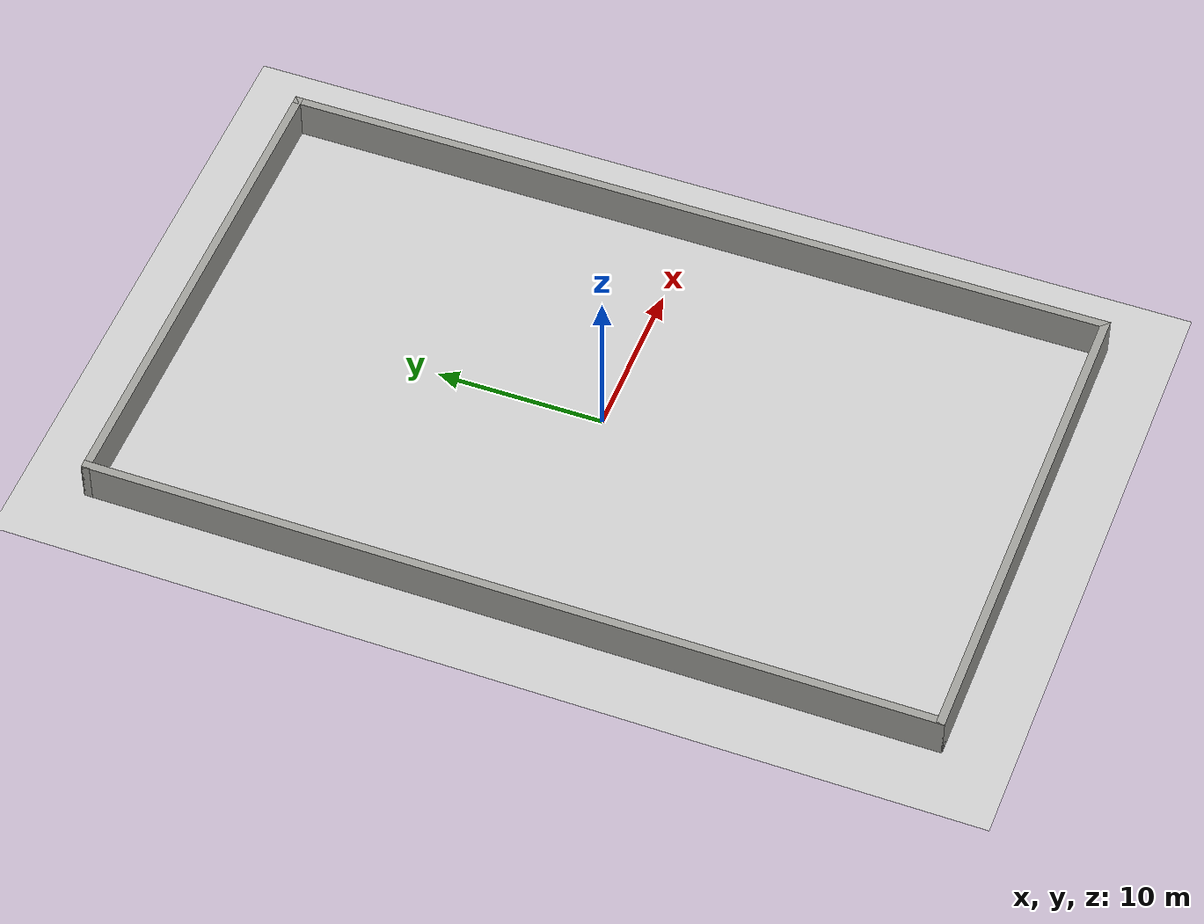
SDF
<sdf version="1.8">
 <world name="world_demo">
  <gravity>0 0 -9.8</gravity>
  <magnetic_field>6e-06 2.3e-05 -4.2e-05</magnetic_field>
  <physics type="ode"><max_step_size>0.004</max_step_size><real_time_factor>1</real_time_factor></physics>
  <plugin name="gz::sim::systems::Physics" filename="gz-sim-physics-system"/>
  <plugin name="gz::sim::systems::UserCommands" filename="gz-sim-user-commands-system"/>
  <plugin name="gz::sim::systems::SceneBroadcaster" filename="gz-sim-scene-broadcaster-system"/>
  <plugin name="gz::sim::systems::Imu" filename="gz-sim-imu-system"/>
  <plugin name="gz::sim::systems::Sensors" filename="gz-sim-sensors-system">
   <render_engine>ogre2</render_engine>
  </plugin>
  <light name="sun" type="directional">
   <pose>21.77 40.69 0 0 -0 1.5708</pose>
   <diffuse>1 1 1 1</diffuse>
   <specular>0.2 0.2 0.2 1</specular>
   <direction>-0.5 -0.5 -1</direction>
  </light>
  <model name="ground_plane">
   <pose>21.77 40.69 0 0 -0 1.5708</pose>
   <static>true</static>
   <link name="link">
    <collision name="collision"><geometry><plane><normal>0 0 1</normal></plane></geometry></collision>
    <visual name="visual">
     <geometry><plane><normal>0 0 1</normal><size>500 500</size></plane></geometry>
     <material>
      <ambient>0.8 0.8 0.8 1</ambient>
      <diffuse>0.8 0.8 0.8 1</diffuse>
      <specular>0.8 0.8 0.8 1</specular>
     </material>
    </visual>
   </link>
  </model>
  <model name="overhead_camera">
   <static>true</static>
   <pose>0 0 38 0 1.5707963 0</pose>
   <link name="link">
    <sensor name="overhead" type="camera">
     <topic>/overhead/image</topic>
     <update_rate>15</update_rate>
     <camera>
      <horizontal_fov>1.3</horizontal_fov>
      <image><width>900</width><height>900</height><format>R8G8B8</format></image>
      <clip><near>0.1</near><far>80.0</far></clip>
     </camera>
     <always_on>1</always_on>
     <visualize>false</visualize>
    </sensor>
   </link>
  </model>
  <model name="perimeter_walls">
   <static>true</static>
   <link name="link">
    <collision name="wall_north_collision">
     <pose>0 25.0 1.25 0 0 0</pose>
     <geometry><box><size>30.5 0.5 2.5</size></box></geometry>
    </collision>
    <visual name="wall_north_visual">
     <pose>0 25.0 1.25 0 0 0</pose>
     <geometry><box><size>30.5 0.5 2.5</size></box></geometry>
     <material><ambient>0.62 0.62 0.6 1</ambient><diffuse>0.62 0.62 0.6 1</diffuse></material>
    </visual>
    <collision name="wall_south_collision">
     <pose>0 -25.0 1.25 0 0 0</pose>
     <geometry><box><size>30.5 0.5 2.5</size></box></geometry>
    </collision>
    <visual name="wall_south_visual">
     <pose>0 -25.0 1.25 0 0 0</pose>
     <geometry><box><size>30.5 0.5 2.5</size></box></geometry>
     <material><ambient>0.62 0.62 0.6 1</ambient><diffuse>0.62 0.62 0.6 1</diffuse></material>
    </visual>
    <collision name="wall_east_collision">
     <pose>15.0 0 1.25 0 0 0</pose>
     <geometry><box><size>0.5 50.5 2.5</size></box></geometry>
    </collision>
    <visual name="wall_east_visual">
     <pose>15.0 0 1.25 0 0 0</pose>
     <geometry><box><size>0.5 50.5 2.5</size></box></geometry>
     <material><ambient>0.62 0.62 0.6 1</ambient><diffuse>0.62 0.62 0.6 1</diffuse></material>
    </visual>
    <collision name="wall_west_collision">
     <pose>-15.0 0 1.25 0 0 0</pose>
     <geometry><box><size>0.5 50.5 2.5</size></box></geometry>
    </collision>
    <visual name="wall_west_visual">
     <pose>-15.0 0 1.25 0 0 0</pose>
     <geometry><box><size>0.5 50.5 2.5</size></box></geometry>
     <material><ambient>0.62 0.62 0.6 1</ambient><diffuse>0.62 0.62 0.6 1</diffuse></material>
    </visual>
   </link>
  </model>
 </world>
</sdf>
